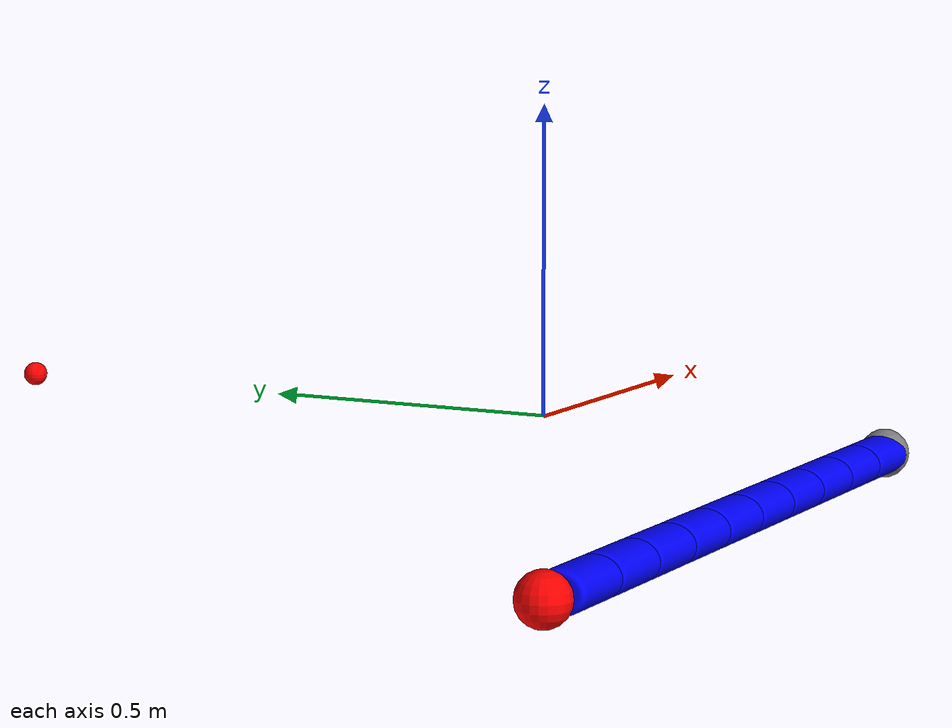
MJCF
<mujoco model="octopus_arm">

    <!-- ===== Compiler Settings ===== -->
    <compiler angle="radian" coordinate="local" />  <!-- Use radians and local coordinates -->

    <!-- ===== Global Simulation Options ===== -->
    <option timestep="0.001" gravity="0 0 0" integrator="implicitfast" />  <!-- Small timestep, no gravity, fast implicit solver -->

    <visual>
        <!-- Uncomment for real-time rendering -->
        <quality shadowsize="16384" numslices="28" offsamples="4" />  <!-- High-quality shadow and sampling -->
        <headlight diffuse="1 1 1" specular="0.5 0.5 0.5" active="1" />  <!-- Enable camera light -->
        <rgba fog="1 0 0 1" haze="1 1 0 1" />  <!-- Optional visual effects (fog/haze) -->
    </visual>

    <!-- ===== Asset Definitions ===== -->
    <asset>
        <!-- Checkerboard floor texture -->
        <texture name="plane" type="2d" builtin="checker" rgb1=".1 .1 .1" rgb2=".9 .9 .9"
                 width="512" height="512" mark="cross" markrgb=".8 .8 .8" />
        <material name="plane" reflectance="0.3" texture="plane" texrepeat="1 1" texuniform="true" />
        <mesh name="elliptical_cylinder" file="link1104.stl" />  <!-- Custom 3D mesh for each segment -->
    </asset>

    <!-- Default joint damping -->
    <default>
        <joint damping="0.01" />
    </default>

    <!-- ===== World and Bodies ===== -->
    <worldbody>

        <!-- Target marker (visual only, non-colliding) -->
        <geom name="goal_marker" type="sphere" size="0.02" rgba="1 0 0 1" pos="0 1 0"
              contype="0" conaffinity="0" group="0" />

        <!-- Ground plane -->
        <geom name="floor" pos="0 0 -2" size="10 10 .1" type="plane" material="plane" condim="3" />

        <!-- Semi-transparent fluid boundary (blue plane at y=0) -->
        <geom name="fluid_boundary" type="plane" size="10 10 10" pos="0 0 0"
              rgba="0 0.5 1 0.3" euler="0 0 0"
              contype="0" conaffinity="0" group="0" />

        <!-- Optional directional light setup -->

        <!-- Root of the arm -->
        <body name="base" pos="0 0 -0.3">
            <geom name="base" type="sphere" size="0.05" rgba="1 0 0 1" density="1000" />  <!-- Fixed base sphere -->

            <!-- ===== 10-Segment Octopus Arm ===== -->
            <body name="segment_1" pos="0.05 0 0">
                <geom name="segment_1" type="mesh" mesh="elliptical_cylinder" euler="0 0 0"
                      rgba="0 0 1 1" density="1000"
                      fluidshape="ellipsoid" fluidcoef="0.7 0.1 0.5 1.0 1.0" />
                <site name="force_torque1" pos="0 0 -0.05" />  <!-- Sensor site -->
                <joint name="joint_1" type="hinge" axis="0 1 0" pos="-0.05 0 0" />  <!-- Rotation around Y-axis -->

                <!-- Segment chain definition -->
                <body name="segment_2" pos="0.15 0 0">
                    <geom name="segment_2" type="mesh" mesh="elliptical_cylinder" euler="0 0 0"
                          rgba="0 0 1 1" density="1000"
                          fluidshape="ellipsoid" fluidcoef="0.7 0.1 0.5 1.0 1.0" />
                    <joint name="joint_2" type="hinge" axis="0 1 0" pos="0 0 0" />

                    <body name="segment_3" pos="0.15 0 0">
                        <geom name="segment_3" type="mesh" mesh="elliptical_cylinder" euler="0 0 0"
                              rgba="0 0 1 1" density="1000"
                              fluidshape="ellipsoid" fluidcoef="0.7 0.1 0.5 1.0 1.0" />
                        <joint name="joint_3" type="hinge" axis="0 1 0" pos="0 0 0" />

                        <body name="segment_4" pos="0.15 0 0">
                            <geom name="segment_4" type="mesh" mesh="elliptical_cylinder" euler="0 0 0"
                                  rgba="0 0 1 1" density="1000"
                                  fluidshape="ellipsoid" fluidcoef="0.7 0.1 0.5 1.0 1.0" />
                            <joint name="joint_4" type="hinge" axis="0 1 0" pos="0 0 0" />

                            <body name="segment_5" pos="0.15 0 0">
                                <geom name="segment_5" type="mesh" mesh="elliptical_cylinder" euler="0 0 0"
                                      rgba="0 0 1 1" density="1000"
                                      fluidshape="ellipsoid" fluidcoef="0.7 0.1 0.5 1.0 1.0" />
                                <joint name="joint_5" type="hinge" axis="0 1 0" pos="0 0 0" />

                                <body name="segment_6" pos="0.15 0 0">
                                    <geom name="segment_6" type="mesh" mesh="elliptical_cylinder" euler="0 0 0"
                                          rgba="0 0 1 1" density="1000"
                                          fluidshape="ellipsoid" fluidcoef="0.7 0.1 0.5 1.0 1.0" />
                                    <joint name="joint_6" type="hinge" axis="0 1 0" pos="0 0 0" />

                                    <body name="segment_7" pos="0.15 0 0">
                                        <geom name="segment_7" type="mesh" mesh="elliptical_cylinder" euler="0 0 0"
                                              rgba="0 0 1 1" density="1000"
                                              fluidshape="ellipsoid" fluidcoef="0.7 0.1 0.5 1.0 1.0" />
                                        <joint name="joint_7" type="hinge" axis="0 1 0" pos="0 0 0" />

                                        <body name="segment_8" pos="0.15 0 0">
                                            <geom name="segment_8" type="mesh" mesh="elliptical_cylinder" euler="0 0 0"
                                                  rgba="0 0 1 1" density="1000"
                                                  fluidshape="ellipsoid" fluidcoef="0.7 0.1 0.5 1.0 1.0" />
                                            <joint name="joint_8" type="hinge" axis="0 1 0" pos="0 0 0" />

                                            <body name="segment_9" pos="0.15 0 0">
                                                <geom name="segment_9" type="mesh" mesh="elliptical_cylinder" euler="0 0 0"
                                                      rgba="0 0 1 1" density="1000"
                                                      fluidshape="ellipsoid" fluidcoef="0.7 0.1 0.5 1.0 1.0" />
                                                <joint name="joint_9" type="hinge" axis="0 1 0" pos="0 0 0" />

                                                <body name="segment_10" pos="0.15 0 0">
                                                    <geom name="segment_10" type="mesh" mesh="elliptical_cylinder" euler="0 0 0"
                                                          rgba="0 0 1 1" density="1000"
                                                          fluidshape="ellipsoid" fluidcoef="0.7 0.1 0.5 1.0 1.0" />
                                                    <joint name="joint_10" type="hinge" axis="0 1 0" pos="0 0 0" />

                                                    <!-- Tip site (used to track end-effector position) -->
                                                    <site name="tip_site" pos="0.15 0 0" size="0.05" />
                                                </body>

                                            </body>
                                        </body>
                                    </body>
                                </body>
                            </body>
                        </body>
                    </body>
                </body>
            </body>
        </body>

    </worldbody>

    <!-- ===== Actuators (Motors for Each Joint) ===== -->
    <actuator>
        <motor joint="joint_1" name="joint_1" ctrllimited="false" />
        <motor joint="joint_2" name="joint_2" ctrllimited="false" />
        <motor joint="joint_3" name="joint_3" ctrllimited="false" />
        <motor joint="joint_4" name="joint_4" ctrllimited="false" />
        <motor joint="joint_5" name="joint_5" ctrllimited="false" />
        <motor joint="joint_6" name="joint_6" ctrllimited="false" />
        <motor joint="joint_7" name="joint_7" ctrllimited="false" />
        <motor joint="joint_8" name="joint_8" ctrllimited="false" />
        <motor joint="joint_9" name="joint_9" ctrllimited="false" />
        <motor joint="joint_10" name="joint_10" ctrllimited="false" />
    </actuator>

    <!-- ===== Sensors (Force Measurement at Base) ===== -->
    <sensor>
        <!-- Can be enabled to log tip position -->
        <force name="force" site="force_torque1" />  <!-- Force sensor at segment_1 site -->
        <!-- Optional torque sensor -->
    </sensor>

</mujoco>
